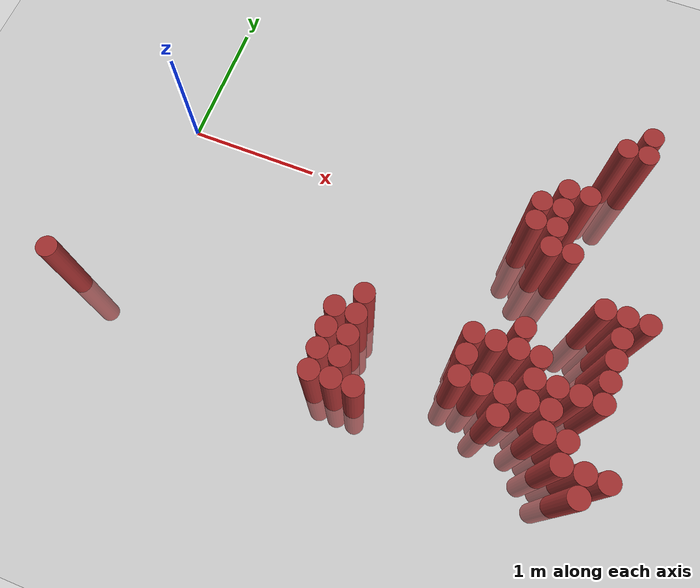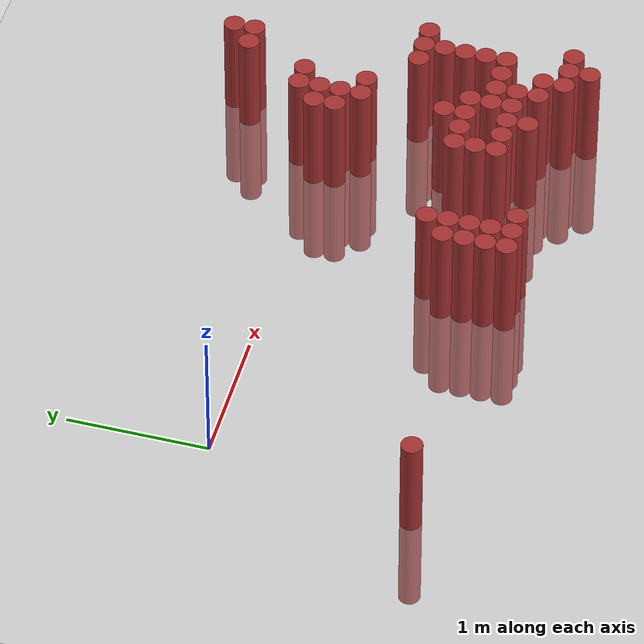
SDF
<sdf version="1.6">
 <world name="default">
  <model name="ground_plane">
   <static>1</static>
   <link name="link">
    <collision name="collision">
     <geometry><plane><normal>0 0 1</normal><size>100 100</size></plane></geometry>
     <surface><friction><ode><mu>100</mu><mu2>50</mu2></ode></friction></surface>
    </collision>
    <visual name="visual">
     <cast_shadows>0</cast_shadows>
     <geometry><plane><normal>0 0 1</normal><size>100 100</size></plane></geometry>
     <material>
      <script><uri>file://media/materials/scripts/gazebo.material</uri><name>Gazebo/Grey</name></script>
     </material>
    </visual>
   </link>
  </model>
  <model name="unit_cylinder_433">
   <static>1</static>
   <pose>-0.275000 -1.475000 0.000000 0.000000 0.000000 0.000000</pose>
   <link name="link">
    <inertial>
     <mass>1</mass>
     <inertia><ixx>0.145833</ixx><ixy>0</ixy><ixz>0</ixz><iyy>0.145833</iyy><iyz>0</iyz><izz>0.125</izz></inertia>
    </inertial>
    <collision name="collision">
     <geometry><cylinder><radius>0.075000</radius><length>1.5</length></cylinder></geometry>
    </collision>
    <visual name="visual">
     <geometry><cylinder><radius>0.075000</radius><length>1.5</length></cylinder></geometry>
     <material>
      <ambient>0.648000 0.192000 0.192000 1</ambient>
      <diffuse>0.648000 0.192000 0.192000 1</diffuse>
     </material>
     <material>
      <script><name>Gazebo/Grey</name><uri>file://media/materials/scripts/gazebo.material</uri></script>
     </material>
    </visual>
   </link>
  </model>
  <model name="unit_cylinder_469">
   <static>1</static>
   <pose>1.675000 -1.625000 0.000000 0.000000 0.000000 0.000000</pose>
   <link name="link">
    <inertial>
     <mass>1</mass>
     <inertia><ixx>0.145833</ixx><ixy>0</ixy><ixz>0</ixz><iyy>0.145833</iyy><iyz>0</iyz><izz>0.125</izz></inertia>
    </inertial>
    <collision name="collision">
     <geometry><cylinder><radius>0.075000</radius><length>1.5</length></cylinder></geometry>
    </collision>
    <visual name="visual">
     <geometry><cylinder><radius>0.075000</radius><length>1.5</length></cylinder></geometry>
     <material>
      <ambient>0.648000 0.192000 0.192000 1</ambient>
      <diffuse>0.648000 0.192000 0.192000 1</diffuse>
     </material>
     <material>
      <script><name>Gazebo/Grey</name><uri>file://media/materials/scripts/gazebo.material</uri></script>
     </material>
    </visual>
   </link>
  </model>
  <model name="unit_cylinder_470">
   <static>1</static>
   <pose>1.675000 -1.475000 0.000000 0.000000 0.000000 0.000000</pose>
   <link name="link">
    <inertial>
     <mass>1</mass>
     <inertia><ixx>0.145833</ixx><ixy>0</ixy><ixz>0</ixz><iyy>0.145833</iyy><iyz>0</iyz><izz>0.125</izz></inertia>
    </inertial>
    <collision name="collision">
     <geometry><cylinder><radius>0.075000</radius><length>1.5</length></cylinder></geometry>
    </collision>
    <visual name="visual">
     <geometry><cylinder><radius>0.075000</radius><length>1.5</length></cylinder></geometry>
     <material>
      <ambient>0.648000 0.192000 0.192000 1</ambient>
      <diffuse>0.648000 0.192000 0.192000 1</diffuse>
     </material>
     <material>
      <script><name>Gazebo/Grey</name><uri>file://media/materials/scripts/gazebo.material</uri></script>
     </material>
    </visual>
   </link>
  </model>
  <model name="unit_cylinder_471">
   <static>1</static>
   <pose>1.675000 -1.325000 0.000000 0.000000 0.000000 0.000000</pose>
   <link name="link">
    <inertial>
     <mass>1</mass>
     <inertia><ixx>0.145833</ixx><ixy>0</ixy><ixz>0</ixz><iyy>0.145833</iyy><iyz>0</iyz><izz>0.125</izz></inertia>
    </inertial>
    <collision name="collision">
     <geometry><cylinder><radius>0.075000</radius><length>1.5</length></cylinder></geometry>
    </collision>
    <visual name="visual">
     <geometry><cylinder><radius>0.075000</radius><length>1.5</length></cylinder></geometry>
     <material>
      <ambient>0.648000 0.192000 0.192000 1</ambient>
      <diffuse>0.648000 0.192000 0.192000 1</diffuse>
     </material>
     <material>
      <script><name>Gazebo/Grey</name><uri>file://media/materials/scripts/gazebo.material</uri></script>
     </material>
    </visual>
   </link>
  </model>
  <model name="unit_cylinder_472">
   <static>1</static>
   <pose>1.675000 -1.175000 0.000000 0.000000 0.000000 0.000000</pose>
   <link name="link">
    <inertial>
     <mass>1</mass>
     <inertia><ixx>0.145833</ixx><ixy>0</ixy><ixz>0</ixz><iyy>0.145833</iyy><iyz>0</iyz><izz>0.125</izz></inertia>
    </inertial>
    <collision name="collision">
     <geometry><cylinder><radius>0.075000</radius><length>1.5</length></cylinder></geometry>
    </collision>
    <visual name="visual">
     <geometry><cylinder><radius>0.075000</radius><length>1.5</length></cylinder></geometry>
     <material>
      <ambient>0.648000 0.192000 0.192000 1</ambient>
      <diffuse>0.648000 0.192000 0.192000 1</diffuse>
     </material>
     <material>
      <script><name>Gazebo/Grey</name><uri>file://media/materials/scripts/gazebo.material</uri></script>
     </material>
    </visual>
   </link>
  </model>
  <model name="unit_cylinder_474">
   <static>1</static>
   <pose>1.825000 -1.625000 0.000000 0.000000 0.000000 0.000000</pose>
   <link name="link">
    <inertial>
     <mass>1</mass>
     <inertia><ixx>0.145833</ixx><ixy>0</ixy><ixz>0</ixz><iyy>0.145833</iyy><iyz>0</iyz><izz>0.125</izz></inertia>
    </inertial>
    <collision name="collision">
     <geometry><cylinder><radius>0.075000</radius><length>1.5</length></cylinder></geometry>
    </collision>
    <visual name="visual">
     <geometry><cylinder><radius>0.075000</radius><length>1.5</length></cylinder></geometry>
     <material>
      <ambient>0.648000 0.192000 0.192000 1</ambient>
      <diffuse>0.648000 0.192000 0.192000 1</diffuse>
     </material>
     <material>
      <script><name>Gazebo/Grey</name><uri>file://media/materials/scripts/gazebo.material</uri></script>
     </material>
    </visual>
   </link>
  </model>
  <model name="unit_cylinder_475">
   <static>1</static>
   <pose>1.825000 -1.475000 0.000000 0.000000 0.000000 0.000000</pose>
   <link name="link">
    <inertial>
     <mass>1</mass>
     <inertia><ixx>0.145833</ixx><ixy>0</ixy><ixz>0</ixz><iyy>0.145833</iyy><iyz>0</iyz><izz>0.125</izz></inertia>
    </inertial>
    <collision name="collision">
     <geometry><cylinder><radius>0.075000</radius><length>1.5</length></cylinder></geometry>
    </collision>
    <visual name="visual">
     <geometry><cylinder><radius>0.075000</radius><length>1.5</length></cylinder></geometry>
     <material>
      <ambient>0.648000 0.192000 0.192000 1</ambient>
      <diffuse>0.648000 0.192000 0.192000 1</diffuse>
     </material>
     <material>
      <script><name>Gazebo/Grey</name><uri>file://media/materials/scripts/gazebo.material</uri></script>
     </material>
    </visual>
   </link>
  </model>
  <model name="unit_cylinder_476">
   <static>1</static>
   <pose>1.825000 -1.325000 0.000000 0.000000 0.000000 0.000000</pose>
   <link name="link">
    <inertial>
     <mass>1</mass>
     <inertia><ixx>0.145833</ixx><ixy>0</ixy><ixz>0</ixz><iyy>0.145833</iyy><iyz>0</iyz><izz>0.125</izz></inertia>
    </inertial>
    <collision name="collision">
     <geometry><cylinder><radius>0.075000</radius><length>1.5</length></cylinder></geometry>
    </collision>
    <visual name="visual">
     <geometry><cylinder><radius>0.075000</radius><length>1.5</length></cylinder></geometry>
     <material>
      <ambient>0.648000 0.192000 0.192000 1</ambient>
      <diffuse>0.648000 0.192000 0.192000 1</diffuse>
     </material>
     <material>
      <script><name>Gazebo/Grey</name><uri>file://media/materials/scripts/gazebo.material</uri></script>
     </material>
    </visual>
   </link>
  </model>
  <model name="unit_cylinder_477">
   <static>1</static>
   <pose>1.825000 -1.175000 0.000000 0.000000 0.000000 0.000000</pose>
   <link name="link">
    <inertial>
     <mass>1</mass>
     <inertia><ixx>0.145833</ixx><ixy>0</ixy><ixz>0</ixz><iyy>0.145833</iyy><iyz>0</iyz><izz>0.125</izz></inertia>
    </inertial>
    <collision name="collision">
     <geometry><cylinder><radius>0.075000</radius><length>1.5</length></cylinder></geometry>
    </collision>
    <visual name="visual">
     <geometry><cylinder><radius>0.075000</radius><length>1.5</length></cylinder></geometry>
     <material>
      <ambient>0.648000 0.192000 0.192000 1</ambient>
      <diffuse>0.648000 0.192000 0.192000 1</diffuse>
     </material>
     <material>
      <script><name>Gazebo/Grey</name><uri>file://media/materials/scripts/gazebo.material</uri></script>
     </material>
    </visual>
   </link>
  </model>
  <model name="unit_cylinder_478">
   <static>1</static>
   <pose>1.825000 -1.025000 0.000000 0.000000 0.000000 0.000000</pose>
   <link name="link">
    <inertial>
     <mass>1</mass>
     <inertia><ixx>0.145833</ixx><ixy>0</ixy><ixz>0</ixz><iyy>0.145833</iyy><iyz>0</iyz><izz>0.125</izz></inertia>
    </inertial>
    <collision name="collision">
     <geometry><cylinder><radius>0.075000</radius><length>1.5</length></cylinder></geometry>
    </collision>
    <visual name="visual">
     <geometry><cylinder><radius>0.075000</radius><length>1.5</length></cylinder></geometry>
     <material>
      <ambient>0.648000 0.192000 0.192000 1</ambient>
      <diffuse>0.648000 0.192000 0.192000 1</diffuse>
     </material>
     <material>
      <script><name>Gazebo/Grey</name><uri>file://media/materials/scripts/gazebo.material</uri></script>
     </material>
    </visual>
   </link>
  </model>
  <model name="unit_cylinder_482">
   <static>1</static>
   <pose>1.975000 -1.625000 0.000000 0.000000 0.000000 0.000000</pose>
   <link name="link">
    <inertial>
     <mass>1</mass>
     <inertia><ixx>0.145833</ixx><ixy>0</ixy><ixz>0</ixz><iyy>0.145833</iyy><iyz>0</iyz><izz>0.125</izz></inertia>
    </inertial>
    <collision name="collision">
     <geometry><cylinder><radius>0.075000</radius><length>1.5</length></cylinder></geometry>
    </collision>
    <visual name="visual">
     <geometry><cylinder><radius>0.075000</radius><length>1.5</length></cylinder></geometry>
     <material>
      <ambient>0.648000 0.192000 0.192000 1</ambient>
      <diffuse>0.648000 0.192000 0.192000 1</diffuse>
     </material>
     <material>
      <script><name>Gazebo/Grey</name><uri>file://media/materials/scripts/gazebo.material</uri></script>
     </material>
    </visual>
   </link>
  </model>
  <model name="unit_cylinder_497">
   <static>1</static>
   <pose>2.575000 -1.325000 0.000000 0.000000 0.000000 0.000000</pose>
   <link name="link">
    <inertial>
     <mass>1</mass>
     <inertia><ixx>0.145833</ixx><ixy>0</ixy><ixz>0</ixz><iyy>0.145833</iyy><iyz>0</iyz><izz>0.125</izz></inertia>
    </inertial>
    <collision name="collision">
     <geometry><cylinder><radius>0.075000</radius><length>1.5</length></cylinder></geometry>
    </collision>
    <visual name="visual">
     <geometry><cylinder><radius>0.075000</radius><length>1.5</length></cylinder></geometry>
     <material>
      <ambient>0.648000 0.192000 0.192000 1</ambient>
      <diffuse>0.648000 0.192000 0.192000 1</diffuse>
     </material>
     <material>
      <script><name>Gazebo/Grey</name><uri>file://media/materials/scripts/gazebo.material</uri></script>
     </material>
    </visual>
   </link>
  </model>
  <model name="unit_cylinder_498">
   <static>1</static>
   <pose>2.575000 -1.175000 0.000000 0.000000 0.000000 0.000000</pose>
   <link name="link">
    <inertial>
     <mass>1</mass>
     <inertia><ixx>0.145833</ixx><ixy>0</ixy><ixz>0</ixz><iyy>0.145833</iyy><iyz>0</iyz><izz>0.125</izz></inertia>
    </inertial>
    <collision name="collision">
     <geometry><cylinder><radius>0.075000</radius><length>1.5</length></cylinder></geometry>
    </collision>
    <visual name="visual">
     <geometry><cylinder><radius>0.075000</radius><length>1.5</length></cylinder></geometry>
     <material>
      <ambient>0.648000 0.192000 0.192000 1</ambient>
      <diffuse>0.648000 0.192000 0.192000 1</diffuse>
     </material>
     <material>
      <script><name>Gazebo/Grey</name><uri>file://media/materials/scripts/gazebo.material</uri></script>
     </material>
    </visual>
   </link>
  </model>
  <model name="unit_cylinder_499">
   <static>1</static>
   <pose>2.575000 -1.025000 0.000000 0.000000 0.000000 0.000000</pose>
   <link name="link">
    <inertial>
     <mass>1</mass>
     <inertia><ixx>0.145833</ixx><ixy>0</ixy><ixz>0</ixz><iyy>0.145833</iyy><iyz>0</iyz><izz>0.125</izz></inertia>
    </inertial>
    <collision name="collision">
     <geometry><cylinder><radius>0.075000</radius><length>1.5</length></cylinder></geometry>
    </collision>
    <visual name="visual">
     <geometry><cylinder><radius>0.075000</radius><length>1.5</length></cylinder></geometry>
     <material>
      <ambient>0.648000 0.192000 0.192000 1</ambient>
      <diffuse>0.648000 0.192000 0.192000 1</diffuse>
     </material>
     <material>
      <script><name>Gazebo/Grey</name><uri>file://media/materials/scripts/gazebo.material</uri></script>
     </material>
    </visual>
   </link>
  </model>
  <model name="unit_cylinder_504">
   <static>1</static>
   <pose>2.725000 -1.325000 0.000000 0.000000 0.000000 0.000000</pose>
   <link name="link">
    <inertial>
     <mass>1</mass>
     <inertia><ixx>0.145833</ixx><ixy>0</ixy><ixz>0</ixz><iyy>0.145833</iyy><iyz>0</iyz><izz>0.125</izz></inertia>
    </inertial>
    <collision name="collision">
     <geometry><cylinder><radius>0.075000</radius><length>1.5</length></cylinder></geometry>
    </collision>
    <visual name="visual">
     <geometry><cylinder><radius>0.075000</radius><length>1.5</length></cylinder></geometry>
     <material>
      <ambient>0.648000 0.192000 0.192000 1</ambient>
      <diffuse>0.648000 0.192000 0.192000 1</diffuse>
     </material>
     <material>
      <script><name>Gazebo/Grey</name><uri>file://media/materials/scripts/gazebo.material</uri></script>
     </material>
    </visual>
   </link>
  </model>
  <model name="unit_cylinder_505">
   <static>1</static>
   <pose>2.725000 -1.025000 0.000000 0.000000 0.000000 0.000000</pose>
   <link name="link">
    <inertial>
     <mass>1</mass>
     <inertia><ixx>0.145833</ixx><ixy>0</ixy><ixz>0</ixz><iyy>0.145833</iyy><iyz>0</iyz><izz>0.125</izz></inertia>
    </inertial>
    <collision name="collision">
     <geometry><cylinder><radius>0.075000</radius><length>1.5</length></cylinder></geometry>
    </collision>
    <visual name="visual">
     <geometry><cylinder><radius>0.075000</radius><length>1.5</length></cylinder></geometry>
     <material>
      <ambient>0.648000 0.192000 0.192000 1</ambient>
      <diffuse>0.648000 0.192000 0.192000 1</diffuse>
     </material>
     <material>
      <script><name>Gazebo/Grey</name><uri>file://media/materials/scripts/gazebo.material</uri></script>
     </material>
    </visual>
   </link>
  </model>
  <model name="unit_cylinder_506">
   <static>1</static>
   <pose>2.725000 -0.125000 0.000000 0.000000 0.000000 0.000000</pose>
   <link name="link">
    <inertial>
     <mass>1</mass>
     <inertia><ixx>0.145833</ixx><ixy>0</ixy><ixz>0</ixz><iyy>0.145833</iyy><iyz>0</iyz><izz>0.125</izz></inertia>
    </inertial>
    <collision name="collision">
     <geometry><cylinder><radius>0.075000</radius><length>1.5</length></cylinder></geometry>
    </collision>
    <visual name="visual">
     <geometry><cylinder><radius>0.075000</radius><length>1.5</length></cylinder></geometry>
     <material>
      <ambient>0.648000 0.192000 0.192000 1</ambient>
      <diffuse>0.648000 0.192000 0.192000 1</diffuse>
     </material>
     <material>
      <script><name>Gazebo/Grey</name><uri>file://media/materials/scripts/gazebo.material</uri></script>
     </material>
    </visual>
   </link>
  </model>
  <model name="unit_cylinder_507">
   <static>1</static>
   <pose>2.725000 0.025000 0.000000 0.000000 0.000000 0.000000</pose>
   <link name="link">
    <inertial>
     <mass>1</mass>
     <inertia><ixx>0.145833</ixx><ixy>0</ixy><ixz>0</ixz><iyy>0.145833</iyy><iyz>0</iyz><izz>0.125</izz></inertia>
    </inertial>
    <collision name="collision">
     <geometry><cylinder><radius>0.075000</radius><length>1.5</length></cylinder></geometry>
    </collision>
    <visual name="visual">
     <geometry><cylinder><radius>0.075000</radius><length>1.5</length></cylinder></geometry>
     <material>
      <ambient>0.648000 0.192000 0.192000 1</ambient>
      <diffuse>0.648000 0.192000 0.192000 1</diffuse>
     </material>
     <material>
      <script><name>Gazebo/Grey</name><uri>file://media/materials/scripts/gazebo.material</uri></script>
     </material>
    </visual>
   </link>
  </model>
  <model name="unit_cylinder_515">
   <static>1</static>
   <pose>2.875000 -1.475000 0.000000 0.000000 0.000000 0.000000</pose>
   <link name="link">
    <inertial>
     <mass>1</mass>
     <inertia><ixx>0.145833</ixx><ixy>0</ixy><ixz>0</ixz><iyy>0.145833</iyy><iyz>0</iyz><izz>0.125</izz></inertia>
    </inertial>
    <collision name="collision">
     <geometry><cylinder><radius>0.075000</radius><length>1.5</length></cylinder></geometry>
    </collision>
    <visual name="visual">
     <geometry><cylinder><radius>0.075000</radius><length>1.5</length></cylinder></geometry>
     <material>
      <ambient>0.648000 0.192000 0.192000 1</ambient>
      <diffuse>0.648000 0.192000 0.192000 1</diffuse>
     </material>
     <material>
      <script><name>Gazebo/Grey</name><uri>file://media/materials/scripts/gazebo.material</uri></script>
     </material>
    </visual>
   </link>
  </model>
  <model name="unit_cylinder_516">
   <static>1</static>
   <pose>2.875000 -1.325000 0.000000 0.000000 0.000000 0.000000</pose>
   <link name="link">
    <inertial>
     <mass>1</mass>
     <inertia><ixx>0.145833</ixx><ixy>0</ixy><ixz>0</ixz><iyy>0.145833</iyy><iyz>0</iyz><izz>0.125</izz></inertia>
    </inertial>
    <collision name="collision">
     <geometry><cylinder><radius>0.075000</radius><length>1.5</length></cylinder></geometry>
    </collision>
    <visual name="visual">
     <geometry><cylinder><radius>0.075000</radius><length>1.5</length></cylinder></geometry>
     <material>
      <ambient>0.648000 0.192000 0.192000 1</ambient>
      <diffuse>0.648000 0.192000 0.192000 1</diffuse>
     </material>
     <material>
      <script><name>Gazebo/Grey</name><uri>file://media/materials/scripts/gazebo.material</uri></script>
     </material>
    </visual>
   </link>
  </model>
  <model name="unit_cylinder_517">
   <static>1</static>
   <pose>2.875000 -1.025000 0.000000 0.000000 0.000000 0.000000</pose>
   <link name="link">
    <inertial>
     <mass>1</mass>
     <inertia><ixx>0.145833</ixx><ixy>0</ixy><ixz>0</ixz><iyy>0.145833</iyy><iyz>0</iyz><izz>0.125</izz></inertia>
    </inertial>
    <collision name="collision">
     <geometry><cylinder><radius>0.075000</radius><length>1.5</length></cylinder></geometry>
    </collision>
    <visual name="visual">
     <geometry><cylinder><radius>0.075000</radius><length>1.5</length></cylinder></geometry>
     <material>
      <ambient>0.648000 0.192000 0.192000 1</ambient>
      <diffuse>0.648000 0.192000 0.192000 1</diffuse>
     </material>
     <material>
      <script><name>Gazebo/Grey</name><uri>file://media/materials/scripts/gazebo.material</uri></script>
     </material>
    </visual>
   </link>
  </model>
  <model name="unit_cylinder_518">
   <static>1</static>
   <pose>2.875000 -0.875000 0.000000 0.000000 0.000000 0.000000</pose>
   <link name="link">
    <inertial>
     <mass>1</mass>
     <inertia><ixx>0.145833</ixx><ixy>0</ixy><ixz>0</ixz><iyy>0.145833</iyy><iyz>0</iyz><izz>0.125</izz></inertia>
    </inertial>
    <collision name="collision">
     <geometry><cylinder><radius>0.075000</radius><length>1.5</length></cylinder></geometry>
    </collision>
    <visual name="visual">
     <geometry><cylinder><radius>0.075000</radius><length>1.5</length></cylinder></geometry>
     <material>
      <ambient>0.648000 0.192000 0.192000 1</ambient>
      <diffuse>0.648000 0.192000 0.192000 1</diffuse>
     </material>
     <material>
      <script><name>Gazebo/Grey</name><uri>file://media/materials/scripts/gazebo.material</uri></script>
     </material>
    </visual>
   </link>
  </model>
  <model name="unit_cylinder_519">
   <static>1</static>
   <pose>2.875000 -0.275000 0.000000 0.000000 0.000000 0.000000</pose>
   <link name="link">
    <inertial>
     <mass>1</mass>
     <inertia><ixx>0.145833</ixx><ixy>0</ixy><ixz>0</ixz><iyy>0.145833</iyy><iyz>0</iyz><izz>0.125</izz></inertia>
    </inertial>
    <collision name="collision">
     <geometry><cylinder><radius>0.075000</radius><length>1.5</length></cylinder></geometry>
    </collision>
    <visual name="visual">
     <geometry><cylinder><radius>0.075000</radius><length>1.5</length></cylinder></geometry>
     <material>
      <ambient>0.648000 0.192000 0.192000 1</ambient>
      <diffuse>0.648000 0.192000 0.192000 1</diffuse>
     </material>
     <material>
      <script><name>Gazebo/Grey</name><uri>file://media/materials/scripts/gazebo.material</uri></script>
     </material>
    </visual>
   </link>
  </model>
  <model name="unit_cylinder_520">
   <static>1</static>
   <pose>2.875000 -0.125000 0.000000 0.000000 0.000000 0.000000</pose>
   <link name="link">
    <inertial>
     <mass>1</mass>
     <inertia><ixx>0.145833</ixx><ixy>0</ixy><ixz>0</ixz><iyy>0.145833</iyy><iyz>0</iyz><izz>0.125</izz></inertia>
    </inertial>
    <collision name="collision">
     <geometry><cylinder><radius>0.075000</radius><length>1.5</length></cylinder></geometry>
    </collision>
    <visual name="visual">
     <geometry><cylinder><radius>0.075000</radius><length>1.5</length></cylinder></geometry>
     <material>
      <ambient>0.648000 0.192000 0.192000 1</ambient>
      <diffuse>0.648000 0.192000 0.192000 1</diffuse>
     </material>
     <material>
      <script><name>Gazebo/Grey</name><uri>file://media/materials/scripts/gazebo.material</uri></script>
     </material>
    </visual>
   </link>
  </model>
  <model name="unit_cylinder_521">
   <static>1</static>
   <pose>2.875000 0.025000 0.000000 0.000000 0.000000 0.000000</pose>
   <link name="link">
    <inertial>
     <mass>1</mass>
     <inertia><ixx>0.145833</ixx><ixy>0</ixy><ixz>0</ixz><iyy>0.145833</iyy><iyz>0</iyz><izz>0.125</izz></inertia>
    </inertial>
    <collision name="collision">
     <geometry><cylinder><radius>0.075000</radius><length>1.5</length></cylinder></geometry>
    </collision>
    <visual name="visual">
     <geometry><cylinder><radius>0.075000</radius><length>1.5</length></cylinder></geometry>
     <material>
      <ambient>0.648000 0.192000 0.192000 1</ambient>
      <diffuse>0.648000 0.192000 0.192000 1</diffuse>
     </material>
     <material>
      <script><name>Gazebo/Grey</name><uri>file://media/materials/scripts/gazebo.material</uri></script>
     </material>
    </visual>
   </link>
  </model>
  <model name="unit_cylinder_522">
   <static>1</static>
   <pose>2.875000 0.175000 0.000000 0.000000 0.000000 0.000000</pose>
   <link name="link">
    <inertial>
     <mass>1</mass>
     <inertia><ixx>0.145833</ixx><ixy>0</ixy><ixz>0</ixz><iyy>0.145833</iyy><iyz>0</iyz><izz>0.125</izz></inertia>
    </inertial>
    <collision name="collision">
     <geometry><cylinder><radius>0.075000</radius><length>1.5</length></cylinder></geometry>
    </collision>
    <visual name="visual">
     <geometry><cylinder><radius>0.075000</radius><length>1.5</length></cylinder></geometry>
     <material>
      <ambient>0.648000 0.192000 0.192000 1</ambient>
      <diffuse>0.648000 0.192000 0.192000 1</diffuse>
     </material>
     <material>
      <script><name>Gazebo/Grey</name><uri>file://media/materials/scripts/gazebo.material</uri></script>
     </material>
    </visual>
   </link>
  </model>
  <model name="unit_cylinder_530">
   <static>1</static>
   <pose>3.025000 -1.325000 0.000000 0.000000 0.000000 0.000000</pose>
   <link name="link">
    <inertial>
     <mass>1</mass>
     <inertia><ixx>0.145833</ixx><ixy>0</ixy><ixz>0</ixz><iyy>0.145833</iyy><iyz>0</iyz><izz>0.125</izz></inertia>
    </inertial>
    <collision name="collision">
     <geometry><cylinder><radius>0.075000</radius><length>1.5</length></cylinder></geometry>
    </collision>
    <visual name="visual">
     <geometry><cylinder><radius>0.075000</radius><length>1.5</length></cylinder></geometry>
     <material>
      <ambient>0.648000 0.192000 0.192000 1</ambient>
      <diffuse>0.648000 0.192000 0.192000 1</diffuse>
     </material>
     <material>
      <script><name>Gazebo/Grey</name><uri>file://media/materials/scripts/gazebo.material</uri></script>
     </material>
    </visual>
   </link>
  </model>
  <model name="unit_cylinder_531">
   <static>1</static>
   <pose>3.025000 -1.175000 0.000000 0.000000 0.000000 0.000000</pose>
   <link name="link">
    <inertial>
     <mass>1</mass>
     <inertia><ixx>0.145833</ixx><ixy>0</ixy><ixz>0</ixz><iyy>0.145833</iyy><iyz>0</iyz><izz>0.125</izz></inertia>
    </inertial>
    <collision name="collision">
     <geometry><cylinder><radius>0.075000</radius><length>1.5</length></cylinder></geometry>
    </collision>
    <visual name="visual">
     <geometry><cylinder><radius>0.075000</radius><length>1.5</length></cylinder></geometry>
     <material>
      <ambient>0.648000 0.192000 0.192000 1</ambient>
      <diffuse>0.648000 0.192000 0.192000 1</diffuse>
     </material>
     <material>
      <script><name>Gazebo/Grey</name><uri>file://media/materials/scripts/gazebo.material</uri></script>
     </material>
    </visual>
   </link>
  </model>
  <model name="unit_cylinder_532">
   <static>1</static>
   <pose>3.025000 -1.025000 0.000000 0.000000 0.000000 0.000000</pose>
   <link name="link">
    <inertial>
     <mass>1</mass>
     <inertia><ixx>0.145833</ixx><ixy>0</ixy><ixz>0</ixz><iyy>0.145833</iyy><iyz>0</iyz><izz>0.125</izz></inertia>
    </inertial>
    <collision name="collision">
     <geometry><cylinder><radius>0.075000</radius><length>1.5</length></cylinder></geometry>
    </collision>
    <visual name="visual">
     <geometry><cylinder><radius>0.075000</radius><length>1.5</length></cylinder></geometry>
     <material>
      <ambient>0.648000 0.192000 0.192000 1</ambient>
      <diffuse>0.648000 0.192000 0.192000 1</diffuse>
     </material>
     <material>
      <script><name>Gazebo/Grey</name><uri>file://media/materials/scripts/gazebo.material</uri></script>
     </material>
    </visual>
   </link>
  </model>
  <model name="unit_cylinder_533">
   <static>1</static>
   <pose>3.025000 -0.275000 0.000000 0.000000 0.000000 0.000000</pose>
   <link name="link">
    <inertial>
     <mass>1</mass>
     <inertia><ixx>0.145833</ixx><ixy>0</ixy><ixz>0</ixz><iyy>0.145833</iyy><iyz>0</iyz><izz>0.125</izz></inertia>
    </inertial>
    <collision name="collision">
     <geometry><cylinder><radius>0.075000</radius><length>1.5</length></cylinder></geometry>
    </collision>
    <visual name="visual">
     <geometry><cylinder><radius>0.075000</radius><length>1.5</length></cylinder></geometry>
     <material>
      <ambient>0.648000 0.192000 0.192000 1</ambient>
      <diffuse>0.648000 0.192000 0.192000 1</diffuse>
     </material>
     <material>
      <script><name>Gazebo/Grey</name><uri>file://media/materials/scripts/gazebo.material</uri></script>
     </material>
    </visual>
   </link>
  </model>
  <model name="unit_cylinder_534">
   <static>1</static>
   <pose>3.025000 0.175000 0.000000 0.000000 0.000000 0.000000</pose>
   <link name="link">
    <inertial>
     <mass>1</mass>
     <inertia><ixx>0.145833</ixx><ixy>0</ixy><ixz>0</ixz><iyy>0.145833</iyy><iyz>0</iyz><izz>0.125</izz></inertia>
    </inertial>
    <collision name="collision">
     <geometry><cylinder><radius>0.075000</radius><length>1.5</length></cylinder></geometry>
    </collision>
    <visual name="visual">
     <geometry><cylinder><radius>0.075000</radius><length>1.5</length></cylinder></geometry>
     <material>
      <ambient>0.648000 0.192000 0.192000 1</ambient>
      <diffuse>0.648000 0.192000 0.192000 1</diffuse>
     </material>
     <material>
      <script><name>Gazebo/Grey</name><uri>file://media/materials/scripts/gazebo.material</uri></script>
     </material>
    </visual>
   </link>
  </model>
  <model name="unit_cylinder_539">
   <static>1</static>
   <pose>3.175000 -1.475000 0.000000 0.000000 0.000000 0.000000</pose>
   <link name="link">
    <inertial>
     <mass>1</mass>
     <inertia><ixx>0.145833</ixx><ixy>0</ixy><ixz>0</ixz><iyy>0.145833</iyy><iyz>0</iyz><izz>0.125</izz></inertia>
    </inertial>
    <collision name="collision">
     <geometry><cylinder><radius>0.075000</radius><length>1.5</length></cylinder></geometry>
    </collision>
    <visual name="visual">
     <geometry><cylinder><radius>0.075000</radius><length>1.5</length></cylinder></geometry>
     <material>
      <ambient>0.648000 0.192000 0.192000 1</ambient>
      <diffuse>0.648000 0.192000 0.192000 1</diffuse>
     </material>
     <material>
      <script><name>Gazebo/Grey</name><uri>file://media/materials/scripts/gazebo.material</uri></script>
     </material>
    </visual>
   </link>
  </model>
  <model name="unit_cylinder_540">
   <static>1</static>
   <pose>3.175000 -1.325000 0.000000 0.000000 0.000000 0.000000</pose>
   <link name="link">
    <inertial>
     <mass>1</mass>
     <inertia><ixx>0.145833</ixx><ixy>0</ixy><ixz>0</ixz><iyy>0.145833</iyy><iyz>0</iyz><izz>0.125</izz></inertia>
    </inertial>
    <collision name="collision">
     <geometry><cylinder><radius>0.075000</radius><length>1.5</length></cylinder></geometry>
    </collision>
    <visual name="visual">
     <geometry><cylinder><radius>0.075000</radius><length>1.5</length></cylinder></geometry>
     <material>
      <ambient>0.648000 0.192000 0.192000 1</ambient>
      <diffuse>0.648000 0.192000 0.192000 1</diffuse>
     </material>
     <material>
      <script><name>Gazebo/Grey</name><uri>file://media/materials/scripts/gazebo.material</uri></script>
     </material>
    </visual>
   </link>
  </model>
  <model name="unit_cylinder_541">
   <static>1</static>
   <pose>3.175000 -1.175000 0.000000 0.000000 0.000000 0.000000</pose>
   <link name="link">
    <inertial>
     <mass>1</mass>
     <inertia><ixx>0.145833</ixx><ixy>0</ixy><ixz>0</ixz><iyy>0.145833</iyy><iyz>0</iyz><izz>0.125</izz></inertia>
    </inertial>
    <collision name="collision">
     <geometry><cylinder><radius>0.075000</radius><length>1.5</length></cylinder></geometry>
    </collision>
    <visual name="visual">
     <geometry><cylinder><radius>0.075000</radius><length>1.5</length></cylinder></geometry>
     <material>
      <ambient>0.648000 0.192000 0.192000 1</ambient>
      <diffuse>0.648000 0.192000 0.192000 1</diffuse>
     </material>
     <material>
      <script><name>Gazebo/Grey</name><uri>file://media/materials/scripts/gazebo.material</uri></script>
     </material>
    </visual>
   </link>
  </model>
  <model name="unit_cylinder_542">
   <static>1</static>
   <pose>3.175000 0.625000 0.000000 0.000000 0.000000 0.000000</pose>
   <link name="link">
    <inertial>
     <mass>1</mass>
     <inertia><ixx>0.145833</ixx><ixy>0</ixy><ixz>0</ixz><iyy>0.145833</iyy><iyz>0</iyz><izz>0.125</izz></inertia>
    </inertial>
    <collision name="collision">
     <geometry><cylinder><radius>0.075000</radius><length>1.5</length></cylinder></geometry>
    </collision>
    <visual name="visual">
     <geometry><cylinder><radius>0.075000</radius><length>1.5</length></cylinder></geometry>
     <material>
      <ambient>0.648000 0.192000 0.192000 1</ambient>
      <diffuse>0.648000 0.192000 0.192000 1</diffuse>
     </material>
     <material>
      <script><name>Gazebo/Grey</name><uri>file://media/materials/scripts/gazebo.material</uri></script>
     </material>
    </visual>
   </link>
  </model>
  <model name="unit_cylinder_551">
   <static>1</static>
   <pose>3.325000 -1.625000 0.000000 0.000000 0.000000 0.000000</pose>
   <link name="link">
    <inertial>
     <mass>1</mass>
     <inertia><ixx>0.145833</ixx><ixy>0</ixy><ixz>0</ixz><iyy>0.145833</iyy><iyz>0</iyz><izz>0.125</izz></inertia>
    </inertial>
    <collision name="collision">
     <geometry><cylinder><radius>0.075000</radius><length>1.5</length></cylinder></geometry>
    </collision>
    <visual name="visual">
     <geometry><cylinder><radius>0.075000</radius><length>1.5</length></cylinder></geometry>
     <material>
      <ambient>0.648000 0.192000 0.192000 1</ambient>
      <diffuse>0.648000 0.192000 0.192000 1</diffuse>
     </material>
     <material>
      <script><name>Gazebo/Grey</name><uri>file://media/materials/scripts/gazebo.material</uri></script>
     </material>
    </visual>
   </link>
  </model>
  <model name="unit_cylinder_552">
   <static>1</static>
   <pose>3.325000 -1.475000 0.000000 0.000000 0.000000 0.000000</pose>
   <link name="link">
    <inertial>
     <mass>1</mass>
     <inertia><ixx>0.145833</ixx><ixy>0</ixy><ixz>0</ixz><iyy>0.145833</iyy><iyz>0</iyz><izz>0.125</izz></inertia>
    </inertial>
    <collision name="collision">
     <geometry><cylinder><radius>0.075000</radius><length>1.5</length></cylinder></geometry>
    </collision>
    <visual name="visual">
     <geometry><cylinder><radius>0.075000</radius><length>1.5</length></cylinder></geometry>
     <material>
      <ambient>0.648000 0.192000 0.192000 1</ambient>
      <diffuse>0.648000 0.192000 0.192000 1</diffuse>
     </material>
     <material>
      <script><name>Gazebo/Grey</name><uri>file://media/materials/scripts/gazebo.material</uri></script>
     </material>
    </visual>
   </link>
  </model>
  <model name="unit_cylinder_553">
   <static>1</static>
   <pose>3.325000 -1.175000 0.000000 0.000000 0.000000 0.000000</pose>
   <link name="link">
    <inertial>
     <mass>1</mass>
     <inertia><ixx>0.145833</ixx><ixy>0</ixy><ixz>0</ixz><iyy>0.145833</iyy><iyz>0</iyz><izz>0.125</izz></inertia>
    </inertial>
    <collision name="collision">
     <geometry><cylinder><radius>0.075000</radius><length>1.5</length></cylinder></geometry>
    </collision>
    <visual name="visual">
     <geometry><cylinder><radius>0.075000</radius><length>1.5</length></cylinder></geometry>
     <material>
      <ambient>0.648000 0.192000 0.192000 1</ambient>
      <diffuse>0.648000 0.192000 0.192000 1</diffuse>
     </material>
     <material>
      <script><name>Gazebo/Grey</name><uri>file://media/materials/scripts/gazebo.material</uri></script>
     </material>
    </visual>
   </link>
  </model>
  <model name="unit_cylinder_554">
   <static>1</static>
   <pose>3.325000 -0.575000 0.000000 0.000000 0.000000 0.000000</pose>
   <link name="link">
    <inertial>
     <mass>1</mass>
     <inertia><ixx>0.145833</ixx><ixy>0</ixy><ixz>0</ixz><iyy>0.145833</iyy><iyz>0</iyz><izz>0.125</izz></inertia>
    </inertial>
    <collision name="collision">
     <geometry><cylinder><radius>0.075000</radius><length>1.5</length></cylinder></geometry>
    </collision>
    <visual name="visual">
     <geometry><cylinder><radius>0.075000</radius><length>1.5</length></cylinder></geometry>
     <material>
      <ambient>0.648000 0.192000 0.192000 1</ambient>
      <diffuse>0.648000 0.192000 0.192000 1</diffuse>
     </material>
     <material>
      <script><name>Gazebo/Grey</name><uri>file://media/materials/scripts/gazebo.material</uri></script>
     </material>
    </visual>
   </link>
  </model>
  <model name="unit_cylinder_555">
   <static>1</static>
   <pose>3.325000 0.625000 0.000000 0.000000 0.000000 0.000000</pose>
   <link name="link">
    <inertial>
     <mass>1</mass>
     <inertia><ixx>0.145833</ixx><ixy>0</ixy><ixz>0</ixz><iyy>0.145833</iyy><iyz>0</iyz><izz>0.125</izz></inertia>
    </inertial>
    <collision name="collision">
     <geometry><cylinder><radius>0.075000</radius><length>1.5</length></cylinder></geometry>
    </collision>
    <visual name="visual">
     <geometry><cylinder><radius>0.075000</radius><length>1.5</length></cylinder></geometry>
     <material>
      <ambient>0.648000 0.192000 0.192000 1</ambient>
      <diffuse>0.648000 0.192000 0.192000 1</diffuse>
     </material>
     <material>
      <script><name>Gazebo/Grey</name><uri>file://media/materials/scripts/gazebo.material</uri></script>
     </material>
    </visual>
   </link>
  </model>
  <model name="unit_cylinder_556">
   <static>1</static>
   <pose>3.325000 0.775000 0.000000 0.000000 0.000000 0.000000</pose>
   <link name="link">
    <inertial>
     <mass>1</mass>
     <inertia><ixx>0.145833</ixx><ixy>0</ixy><ixz>0</ixz><iyy>0.145833</iyy><iyz>0</iyz><izz>0.125</izz></inertia>
    </inertial>
    <collision name="collision">
     <geometry><cylinder><radius>0.075000</radius><length>1.5</length></cylinder></geometry>
    </collision>
    <visual name="visual">
     <geometry><cylinder><radius>0.075000</radius><length>1.5</length></cylinder></geometry>
     <material>
      <ambient>0.648000 0.192000 0.192000 1</ambient>
      <diffuse>0.648000 0.192000 0.192000 1</diffuse>
     </material>
     <material>
      <script><name>Gazebo/Grey</name><uri>file://media/materials/scripts/gazebo.material</uri></script>
     </material>
    </visual>
   </link>
  </model>
  <model name="unit_cylinder_564">
   <static>1</static>
   <pose>3.475000 -1.775000 0.000000 0.000000 0.000000 0.000000</pose>
   <link name="link">
    <inertial>
     <mass>1</mass>
     <inertia><ixx>0.145833</ixx><ixy>0</ixy><ixz>0</ixz><iyy>0.145833</iyy><iyz>0</iyz><izz>0.125</izz></inertia>
    </inertial>
    <collision name="collision">
     <geometry><cylinder><radius>0.075000</radius><length>1.5</length></cylinder></geometry>
    </collision>
    <visual name="visual">
     <geometry><cylinder><radius>0.075000</radius><length>1.5</length></cylinder></geometry>
     <material>
      <ambient>0.648000 0.192000 0.192000 1</ambient>
      <diffuse>0.648000 0.192000 0.192000 1</diffuse>
     </material>
     <material>
      <script><name>Gazebo/Grey</name><uri>file://media/materials/scripts/gazebo.material</uri></script>
     </material>
    </visual>
   </link>
  </model>
  <model name="unit_cylinder_565">
   <static>1</static>
   <pose>3.475000 -1.625000 0.000000 0.000000 0.000000 0.000000</pose>
   <link name="link">
    <inertial>
     <mass>1</mass>
     <inertia><ixx>0.145833</ixx><ixy>0</ixy><ixz>0</ixz><iyy>0.145833</iyy><iyz>0</iyz><izz>0.125</izz></inertia>
    </inertial>
    <collision name="collision">
     <geometry><cylinder><radius>0.075000</radius><length>1.5</length></cylinder></geometry>
    </collision>
    <visual name="visual">
     <geometry><cylinder><radius>0.075000</radius><length>1.5</length></cylinder></geometry>
     <material>
      <ambient>0.648000 0.192000 0.192000 1</ambient>
      <diffuse>0.648000 0.192000 0.192000 1</diffuse>
     </material>
     <material>
      <script><name>Gazebo/Grey</name><uri>file://media/materials/scripts/gazebo.material</uri></script>
     </material>
    </visual>
   </link>
  </model>
  <model name="unit_cylinder_566">
   <static>1</static>
   <pose>3.475000 -1.175000 0.000000 0.000000 0.000000 0.000000</pose>
   <link name="link">
    <inertial>
     <mass>1</mass>
     <inertia><ixx>0.145833</ixx><ixy>0</ixy><ixz>0</ixz><iyy>0.145833</iyy><iyz>0</iyz><izz>0.125</izz></inertia>
    </inertial>
    <collision name="collision">
     <geometry><cylinder><radius>0.075000</radius><length>1.5</length></cylinder></geometry>
    </collision>
    <visual name="visual">
     <geometry><cylinder><radius>0.075000</radius><length>1.5</length></cylinder></geometry>
     <material>
      <ambient>0.648000 0.192000 0.192000 1</ambient>
      <diffuse>0.648000 0.192000 0.192000 1</diffuse>
     </material>
     <material>
      <script><name>Gazebo/Grey</name><uri>file://media/materials/scripts/gazebo.material</uri></script>
     </material>
    </visual>
   </link>
  </model>
  <model name="unit_cylinder_567">
   <static>1</static>
   <pose>3.475000 -1.025000 0.000000 0.000000 0.000000 0.000000</pose>
   <link name="link">
    <inertial>
     <mass>1</mass>
     <inertia><ixx>0.145833</ixx><ixy>0</ixy><ixz>0</ixz><iyy>0.145833</iyy><iyz>0</iyz><izz>0.125</izz></inertia>
    </inertial>
    <collision name="collision">
     <geometry><cylinder><radius>0.075000</radius><length>1.5</length></cylinder></geometry>
    </collision>
    <visual name="visual">
     <geometry><cylinder><radius>0.075000</radius><length>1.5</length></cylinder></geometry>
     <material>
      <ambient>0.648000 0.192000 0.192000 1</ambient>
      <diffuse>0.648000 0.192000 0.192000 1</diffuse>
     </material>
     <material>
      <script><name>Gazebo/Grey</name><uri>file://media/materials/scripts/gazebo.material</uri></script>
     </material>
    </visual>
   </link>
  </model>
  <model name="unit_cylinder_568">
   <static>1</static>
   <pose>3.475000 -0.875000 0.000000 0.000000 0.000000 0.000000</pose>
   <link name="link">
    <inertial>
     <mass>1</mass>
     <inertia><ixx>0.145833</ixx><ixy>0</ixy><ixz>0</ixz><iyy>0.145833</iyy><iyz>0</iyz><izz>0.125</izz></inertia>
    </inertial>
    <collision name="collision">
     <geometry><cylinder><radius>0.075000</radius><length>1.5</length></cylinder></geometry>
    </collision>
    <visual name="visual">
     <geometry><cylinder><radius>0.075000</radius><length>1.5</length></cylinder></geometry>
     <material>
      <ambient>0.648000 0.192000 0.192000 1</ambient>
      <diffuse>0.648000 0.192000 0.192000 1</diffuse>
     </material>
     <material>
      <script><name>Gazebo/Grey</name><uri>file://media/materials/scripts/gazebo.material</uri></script>
     </material>
    </visual>
   </link>
  </model>
  <model name="unit_cylinder_569">
   <static>1</static>
   <pose>3.475000 -0.725000 0.000000 0.000000 0.000000 0.000000</pose>
   <link name="link">
    <inertial>
     <mass>1</mass>
     <inertia><ixx>0.145833</ixx><ixy>0</ixy><ixz>0</ixz><iyy>0.145833</iyy><iyz>0</iyz><izz>0.125</izz></inertia>
    </inertial>
    <collision name="collision">
     <geometry><cylinder><radius>0.075000</radius><length>1.5</length></cylinder></geometry>
    </collision>
    <visual name="visual">
     <geometry><cylinder><radius>0.075000</radius><length>1.5</length></cylinder></geometry>
     <material>
      <ambient>0.648000 0.192000 0.192000 1</ambient>
      <diffuse>0.648000 0.192000 0.192000 1</diffuse>
     </material>
     <material>
      <script><name>Gazebo/Grey</name><uri>file://media/materials/scripts/gazebo.material</uri></script>
     </material>
    </visual>
   </link>
  </model>
  <model name="unit_cylinder_570">
   <static>1</static>
   <pose>3.475000 -0.575000 0.000000 0.000000 0.000000 0.000000</pose>
   <link name="link">
    <inertial>
     <mass>1</mass>
     <inertia><ixx>0.145833</ixx><ixy>0</ixy><ixz>0</ixz><iyy>0.145833</iyy><iyz>0</iyz><izz>0.125</izz></inertia>
    </inertial>
    <collision name="collision">
     <geometry><cylinder><radius>0.075000</radius><length>1.5</length></cylinder></geometry>
    </collision>
    <visual name="visual">
     <geometry><cylinder><radius>0.075000</radius><length>1.5</length></cylinder></geometry>
     <material>
      <ambient>0.648000 0.192000 0.192000 1</ambient>
      <diffuse>0.648000 0.192000 0.192000 1</diffuse>
     </material>
     <material>
      <script><name>Gazebo/Grey</name><uri>file://media/materials/scripts/gazebo.material</uri></script>
     </material>
    </visual>
   </link>
  </model>
  <model name="unit_cylinder_580">
   <static>1</static>
   <pose>3.625000 -1.625000 0.000000 0.000000 0.000000 0.000000</pose>
   <link name="link">
    <inertial>
     <mass>1</mass>
     <inertia><ixx>0.145833</ixx><ixy>0</ixy><ixz>0</ixz><iyy>0.145833</iyy><iyz>0</iyz><izz>0.125</izz></inertia>
    </inertial>
    <collision name="collision">
     <geometry><cylinder><radius>0.075000</radius><length>1.5</length></cylinder></geometry>
    </collision>
    <visual name="visual">
     <geometry><cylinder><radius>0.075000</radius><length>1.5</length></cylinder></geometry>
     <material>
      <ambient>0.648000 0.192000 0.192000 1</ambient>
      <diffuse>0.648000 0.192000 0.192000 1</diffuse>
     </material>
     <material>
      <script><name>Gazebo/Grey</name><uri>file://media/materials/scripts/gazebo.material</uri></script>
     </material>
    </visual>
   </link>
  </model>
  <model name="unit_cylinder_581">
   <static>1</static>
   <pose>3.625000 -0.575000 0.000000 0.000000 0.000000 0.000000</pose>
   <link name="link">
    <inertial>
     <mass>1</mass>
     <inertia><ixx>0.145833</ixx><ixy>0</ixy><ixz>0</ixz><iyy>0.145833</iyy><iyz>0</iyz><izz>0.125</izz></inertia>
    </inertial>
    <collision name="collision">
     <geometry><cylinder><radius>0.075000</radius><length>1.5</length></cylinder></geometry>
    </collision>
    <visual name="visual">
     <geometry><cylinder><radius>0.075000</radius><length>1.5</length></cylinder></geometry>
     <material>
      <ambient>0.648000 0.192000 0.192000 1</ambient>
      <diffuse>0.648000 0.192000 0.192000 1</diffuse>
     </material>
     <material>
      <script><name>Gazebo/Grey</name><uri>file://media/materials/scripts/gazebo.material</uri></script>
     </material>
    </visual>
   </link>
  </model>
 </world>
</sdf>
